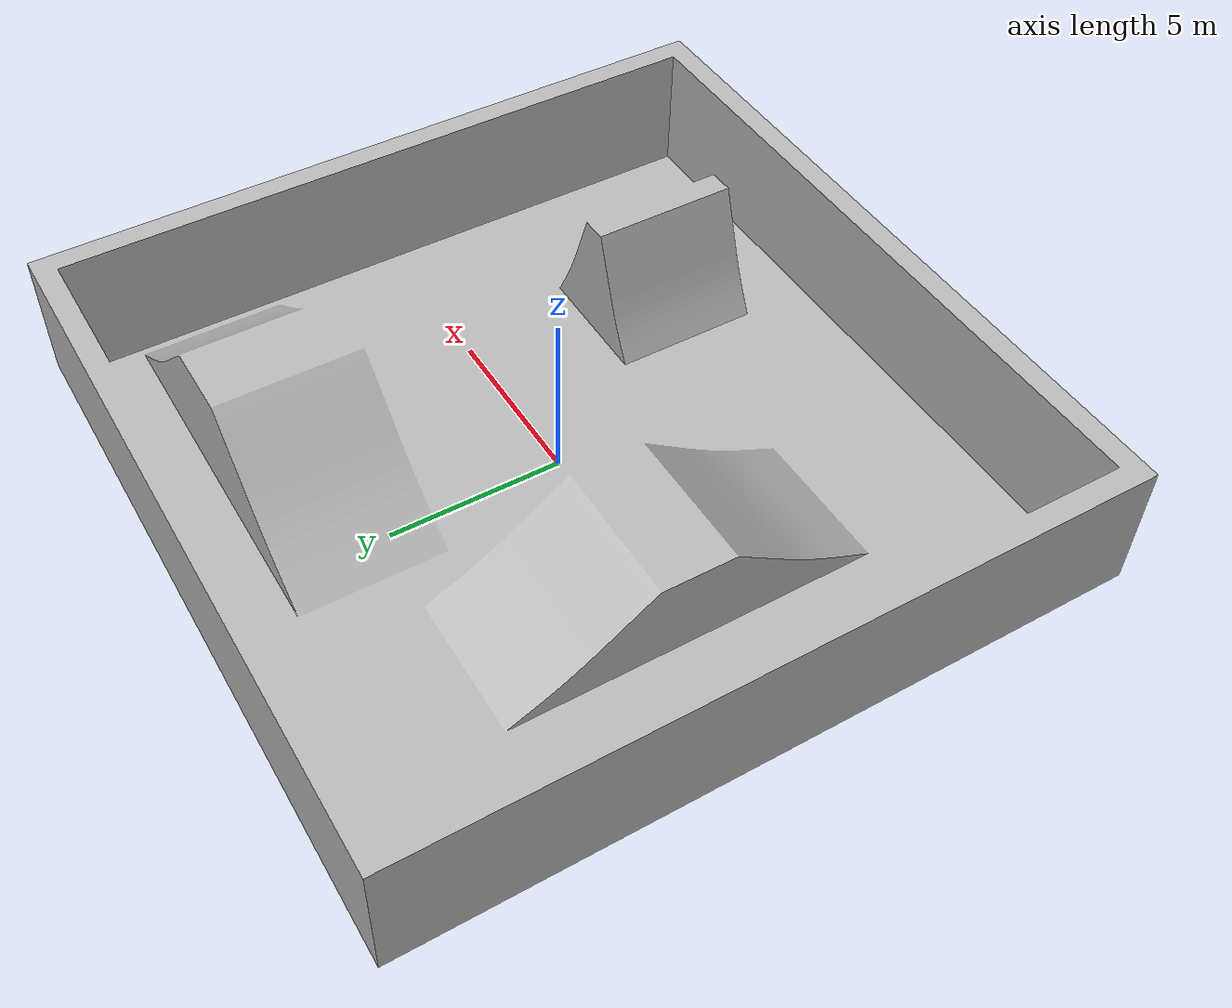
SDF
<?xml version="1.0" ?>
<sdf version="1.8">
  <world name="terrain_plane">
    <physics name="1ms" type="ignored">
      <max_step_size>0.001</max_step_size>
      <real_time_factor>1.0</real_time_factor>
    </physics>

    <plugin
      filename="gz-sim-physics-system"
      name="gz::sim::systems::Physics">
    </plugin>
    <plugin
      filename="gz-sim-user-commands-system"
      name="gz::sim::systems::UserCommands">
    </plugin>
    <plugin
      filename="gz-sim-scene-broadcaster-system"
      name="gz::sim::systems::SceneBroadcaster">
    </plugin>
    <plugin
      filename="gz-sim-sensors-system"
      name="gz::sim::systems::Sensors">
      <render_engine>ogre</render_engine>
    </plugin>

    <light type="directional" name="sun">
      <cast_shadows>true</cast_shadows>
      <pose>0 0 10 0 0 0</pose>
      <diffuse>0.8 0.8 0.8 1</diffuse>
      <specular>0.2 0.2 0.2 1</specular>
      <attenuation>
        <range>1000</range>
        <constant>0.9</constant>
        <linear>0.01</linear>
        <quadratic>0.001</quadratic>
      </attenuation>
      <direction>-0.5 0.1 -0.9</direction>
    </light>

    <model name="terrain">
      <static>true</static>
      <link name="terrain_link">
        <collision name="terrain_collision">
          <geometry>
            <mesh>
              <uri>file:///home/airlagx1/elevation_tests/Seb-Naver-ros2/seb_naver_ros2/src/seb_naver_simulation/meshes/terrainplane.obj</uri>
              <scale>0.7 0.7 1</scale>
            </mesh>
          </geometry>
        </collision>
        <visual name="terrain_visual">
          <geometry>
            <mesh>
              <uri>file:///home/airlagx1/elevation_tests/Seb-Naver-ros2/seb_naver_ros2/src/seb_naver_simulation/meshes/terrainplane.obj</uri>
              <scale>0.7 0.7 1</scale>
            </mesh>
          </geometry>
        </visual>
      </link>
    </model>
  </world>
</sdf>
